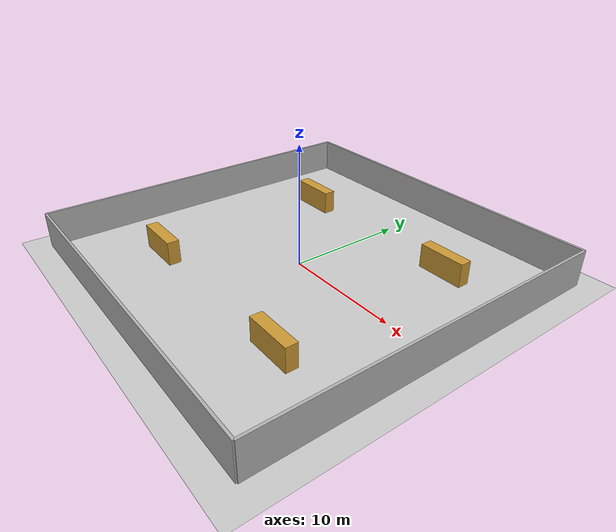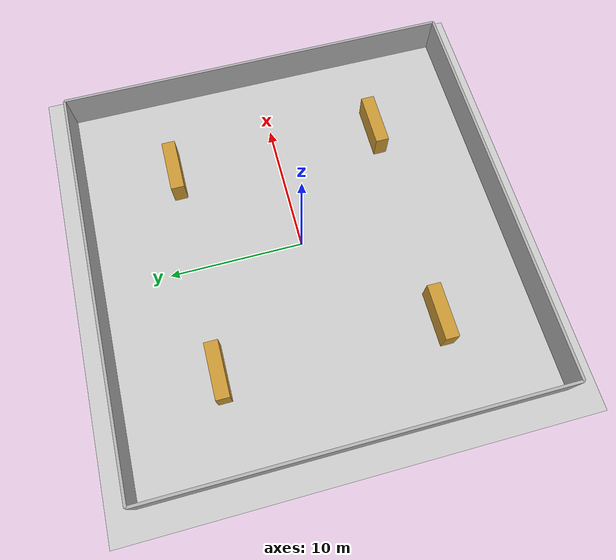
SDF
<?xml version="1.0" ?>
<sdf version="1.6">
  <world name="warehouse">
    <include>
      <uri>model://sun</uri>
    </include>
    <include>
      <uri>model://ground_plane</uri>
    </include>

    <!-- Warehouse walls -->
    <model name="wall_north">
      <static>true</static>
      <pose>0 15 1.5 0 0 0</pose>
      <link name="link">
        <collision name="collision">
          <geometry>
            <box>
              <size>30 0.2 3</size>
            </box>
          </geometry>
        </collision>
        <visual name="visual">
          <geometry>
            <box>
              <size>30 0.2 3</size>
            </box>
          </geometry>
          <material>
            <ambient>0.7 0.7 0.7 1</ambient>
          </material>
        </visual>
      </link>
    </model>

    <model name="wall_south">
      <static>true</static>
      <pose>0 -15 1.5 0 0 0</pose>
      <link name="link">
        <collision name="collision">
          <geometry>
            <box>
              <size>30 0.2 3</size>
            </box>
          </geometry>
        </collision>
        <visual name="visual">
          <geometry>
            <box>
              <size>30 0.2 3</size>
            </box>
          </geometry>
          <material>
            <ambient>0.7 0.7 0.7 1</ambient>
          </material>
        </visual>
      </link>
    </model>

    <model name="wall_east">
      <static>true</static>
      <pose>15 0 1.5 0 0 1.57</pose>
      <link name="link">
        <collision name="collision">
          <geometry>
            <box>
              <size>30 0.2 3</size>
            </box>
          </geometry>
        </collision>
        <visual name="visual">
          <geometry>
            <box>
              <size>30 0.2 3</size>
            </box>
          </geometry>
          <material>
            <ambient>0.7 0.7 0.7 1</ambient>
          </material>
        </visual>
      </link>
    </model>

    <model name="wall_west">
      <static>true</static>
      <pose>-15 0 1.5 0 0 1.57</pose>
      <link name="link">
        <collision name="collision">
          <geometry>
            <box>
              <size>30 0.2 3</size>
            </box>
          </geometry>
        </collision>
        <visual name="visual">
          <geometry>
            <box>
              <size>30 0.2 3</size>
            </box>
          </geometry>
          <material>
            <ambient>0.7 0.7 0.7 1</ambient>
          </material>
        </visual>
      </link>
    </model>

    <!-- Storage shelves -->
    <model name="shelf_1">
      <static>true</static>
      <pose>-8 -8 1 0 0 0</pose>
      <link name="link">
        <collision name="collision">
          <geometry>
            <box>
              <size>4 1 2</size>
            </box>
          </geometry>
        </collision>
        <visual name="visual">
          <geometry>
            <box>
              <size>4 1 2</size>
            </box>
          </geometry>
          <material>
            <ambient>0.8 0.6 0.2 1</ambient>
          </material>
        </visual>
      </link>
    </model>

    <model name="shelf_2">
      <static>true</static>
      <pose>8 -8 1 0 0 0</pose>
      <link name="link">
        <collision name="collision">
          <geometry>
            <box>
              <size>4 1 2</size>
            </box>
          </geometry>
        </collision>
        <visual name="visual">
          <geometry>
            <box>
              <size>4 1 2</size>
            </box>
          </geometry>
          <material>
            <ambient>0.8 0.6 0.2 1</ambient>
          </material>
        </visual>
      </link>
    </model>

    <model name="shelf_3">
      <static>true</static>
      <pose>-8 8 1 0 0 0</pose>
      <link name="link">
        <collision name="collision">
          <geometry>
            <box>
              <size>4 1 2</size>
            </box>
          </geometry>
        </collision>
        <visual name="visual">
          <geometry>
            <box>
              <size>4 1 2</size>
            </box>
          </geometry>
          <material>
            <ambient>0.8 0.6 0.2 1</ambient>
          </material>
        </visual>
      </link>
    </model>

    <model name="shelf_4">
      <static>true</static>
      <pose>8 8 1 0 0 0</pose>
      <link name="link">
        <collision name="collision">
          <geometry>
            <box>
              <size>4 1 2</size>
            </box>
          </geometry>
        </collision>
        <visual name="visual">
          <geometry>
            <box>
              <size>4 1 2</size>
            </box>
          </geometry>
          <material>
            <ambient>0.8 0.6 0.2 1</ambient>
          </material>
        </visual>
      </link>
    </model>

  </world>
</sdf>
